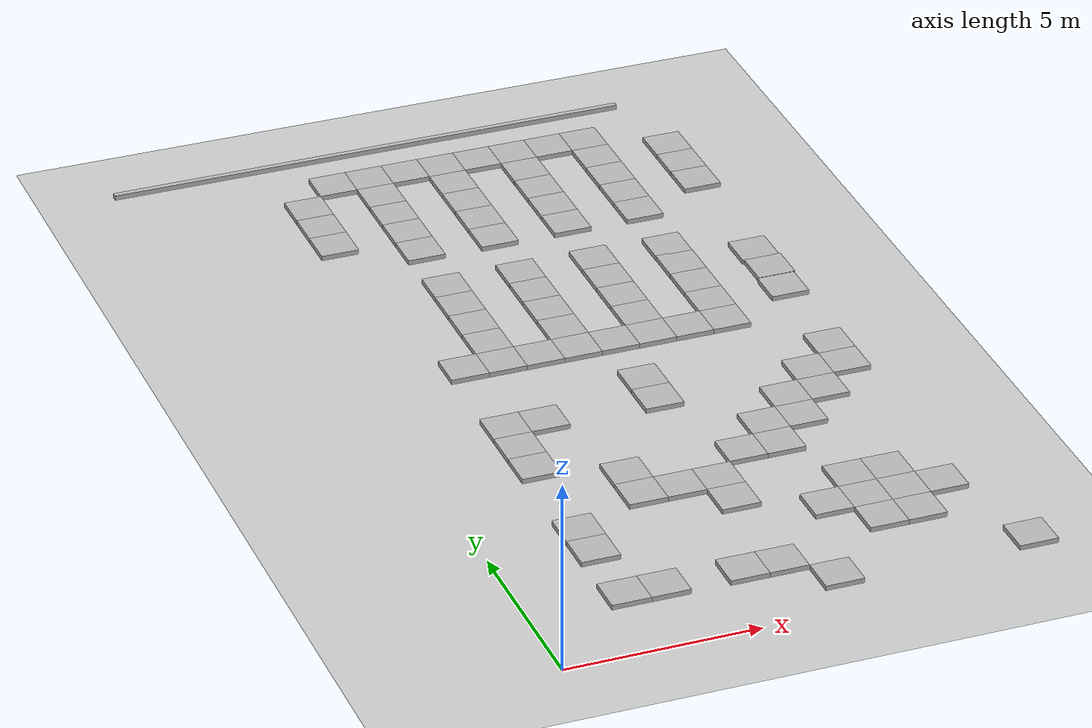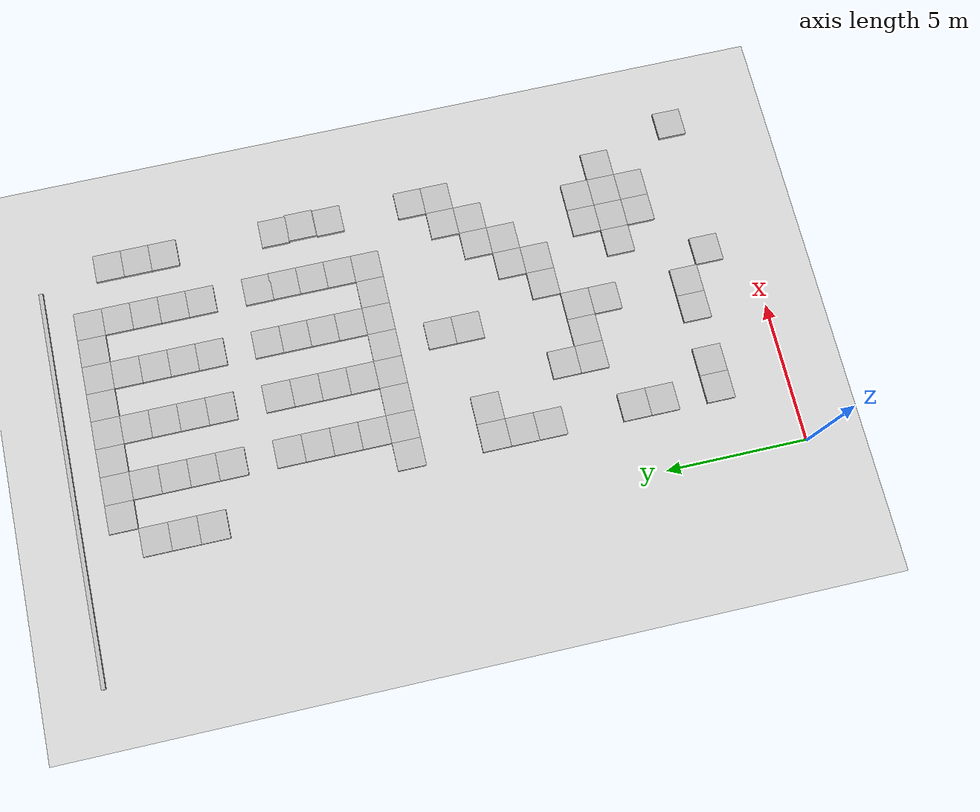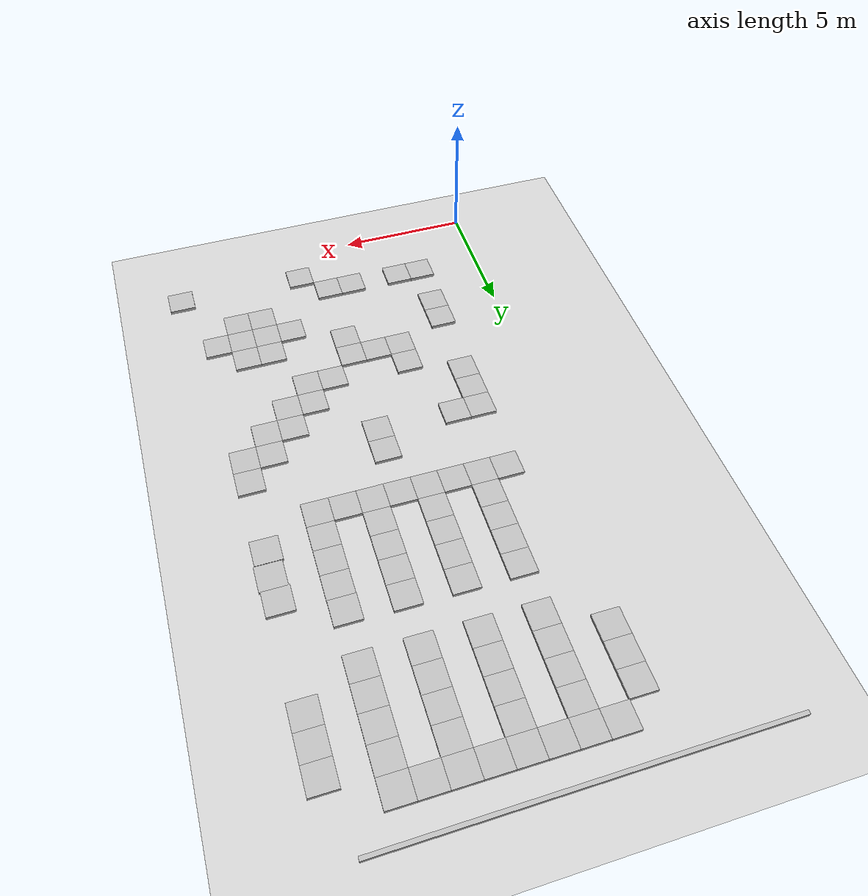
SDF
<sdf version="1.7">
 <world name="default">
  <model name="ground_plane">
   <static>1</static>
   <link name="link">
    <collision name="collision">
     <geometry><plane><normal>0 0 1</normal><size>100 100</size></plane></geometry>
     <surface>
      <contact><collide_bitmask>65535</collide_bitmask></contact>
      <friction><ode><mu>100</mu><mu2>50</mu2></ode></friction>
     </surface>
    </collision>
    <visual name="visual">
     <cast_shadows>0</cast_shadows>
     <geometry><plane><normal>0 0 1</normal><size>100 100</size></plane></geometry>
     <material>
      <script><uri>file://media/materials/scripts/gazebo.material</uri><name>Gazebo/Grey</name></script>
     </material>
    </visual>
   </link>
  </model>
  <model name="concrete_cube_1m_4">
   <static>1</static>
   <link name="link">
    <collision name="concrete_cube_1m">
     <pose>-0 0 0.3 0 -0 0</pose>
     <geometry><box><size>1 1 0.6</size></box></geometry>
    </collision>
    <visual name="concrete_cube_1m_visual">
     <geometry><mesh><uri>model://concrete_cube_1m/meshes/concrete_cube_1m.dae</uri></mesh></geometry>
    </visual>
   </link>
   <pose>6.5 2.5 0 0 -0 0</pose>
  </model>
  <model name="concrete_cube_1m_5">
   <static>1</static>
   <link name="link">
    <collision name="concrete_cube_1m">
     <pose>-0 0 0.3 0 -0 0</pose>
     <geometry><box><size>1 1 0.6</size></box></geometry>
    </collision>
    <visual name="concrete_cube_1m_visual">
     <geometry><mesh><uri>model://concrete_cube_1m/meshes/concrete_cube_1m.dae</uri></mesh></geometry>
    </visual>
   </link>
   <pose>5.5 2.5 0 0 -0 0</pose>
  </model>
  <model name="concrete_cube_1m_17">
   <static>1</static>
   <link name="link">
    <collision name="concrete_cube_1m">
     <pose>-0 0 0.3 0 -0 0</pose>
     <geometry><box><size>1 1 0.6</size></box></geometry>
    </collision>
    <visual name="concrete_cube_1m_visual">
     <geometry><mesh><uri>model://concrete_cube_1m/meshes/concrete_cube_1m.dae</uri></mesh></geometry>
    </visual>
   </link>
   <pose>2.5 5.5 0 0 -0 0</pose>
  </model>
  <model name="concrete_cube_1m_18">
   <static>1</static>
   <link name="link">
    <collision name="concrete_cube_1m">
     <pose>-0 0 0.3 0 -0 0</pose>
     <geometry><box><size>1 1 0.6</size></box></geometry>
    </collision>
    <visual name="concrete_cube_1m_visual">
     <geometry><mesh><uri>model://concrete_cube_1m/meshes/concrete_cube_1m.dae</uri></mesh></geometry>
    </visual>
   </link>
   <pose>8.5 8.5 0 0 -0 0</pose>
  </model>
  <model name="concrete_cube_1m_19">
   <static>1</static>
   <link name="link">
    <collision name="concrete_cube_1m">
     <pose>-0 0 0.3 0 -0 0</pose>
     <geometry><box><size>1 1 0.6</size></box></geometry>
    </collision>
    <visual name="concrete_cube_1m_visual">
     <geometry><mesh><uri>model://concrete_cube_1m/meshes/concrete_cube_1m.dae</uri></mesh></geometry>
    </visual>
   </link>
   <pose>7.5 7.5 0 0 -0 0</pose>
  </model>
  <model name="concrete_cube_1m_20">
   <static>1</static>
   <link name="link">
    <collision name="concrete_cube_1m">
     <pose>-0 0 0.3 0 -0 0</pose>
     <geometry><box><size>1 1 0.6</size></box></geometry>
    </collision>
    <visual name="concrete_cube_1m_visual">
     <geometry><mesh><uri>model://concrete_cube_1m/meshes/concrete_cube_1m.dae</uri></mesh></geometry>
    </visual>
   </link>
   <pose>6.5 6.5 0 0 -0 0</pose>
  </model>
  <model name="concrete_cube_1m_21">
   <static>1</static>
   <link name="link">
    <collision name="concrete_cube_1m">
     <pose>-0 0 0.3 0 -0 0</pose>
     <geometry><box><size>1 1 0.6</size></box></geometry>
    </collision>
    <visual name="concrete_cube_1m_visual">
     <geometry><mesh><uri>model://concrete_cube_1m/meshes/concrete_cube_1m.dae</uri></mesh></geometry>
    </visual>
   </link>
   <pose>6.5 5.5 0 0 -0 0</pose>
  </model>
  <model name="concrete_cube_1m_22">
   <static>1</static>
   <link name="link">
    <collision name="concrete_cube_1m">
     <pose>-0 0 0.3 0 -0 0</pose>
     <geometry><box><size>1 1 0.6</size></box></geometry>
    </collision>
    <visual name="concrete_cube_1m_visual">
     <geometry><mesh><uri>model://concrete_cube_1m/meshes/concrete_cube_1m.dae</uri></mesh></geometry>
    </visual>
   </link>
   <pose>5.5 6.5 0 0 -0 0</pose>
  </model>
  <model name="concrete_cube_1m_23">
   <static>1</static>
   <link name="link">
    <collision name="concrete_cube_1m">
     <pose>-0 0 0.3 0 -0 0</pose>
     <geometry><box><size>1 1 0.6</size></box></geometry>
    </collision>
    <visual name="concrete_cube_1m_visual">
     <geometry><mesh><uri>model://concrete_cube_1m/meshes/concrete_cube_1m.dae</uri></mesh></geometry>
    </visual>
   </link>
   <pose>4.5 6.5 0 0 -0 0</pose>
  </model>
  <model name="concrete_cube_1m_24">
   <static>1</static>
   <link name="link">
    <collision name="concrete_cube_1m">
     <pose>-0 0 0.3 0 -0 0</pose>
     <geometry><box><size>1 1 0.6</size></box></geometry>
    </collision>
    <visual name="concrete_cube_1m_visual">
     <geometry><mesh><uri>model://concrete_cube_1m/meshes/concrete_cube_1m.dae</uri></mesh></geometry>
    </visual>
   </link>
   <pose>4.5 7.5 0 0 -0 0</pose>
  </model>
  <model name="concrete_cube_1m_25">
   <static>1</static>
   <link name="link">
    <collision name="concrete_cube_1m">
     <pose>-0 0 0.3 0 -0 0</pose>
     <geometry><box><size>1 1 0.6</size></box></geometry>
    </collision>
    <visual name="concrete_cube_1m_visual">
     <geometry><mesh><uri>model://concrete_cube_1m/meshes/concrete_cube_1m.dae</uri></mesh></geometry>
    </visual>
   </link>
   <pose>3.5 2.5 0 0 -0 0</pose>
  </model>
  <model name="concrete_cube_1m_26">
   <static>1</static>
   <link name="link">
    <collision name="concrete_cube_1m">
     <pose>-0 0 0.3 0 -0 0</pose>
     <geometry><box><size>1 1 0.6</size></box></geometry>
    </collision>
    <visual name="concrete_cube_1m_visual">
     <geometry><mesh><uri>model://concrete_cube_1m/meshes/concrete_cube_1m.dae</uri></mesh></geometry>
    </visual>
   </link>
   <pose>2.5 2.5 0 0 -0 0</pose>
  </model>
  <model name="concrete_cube_1m_30">
   <static>1</static>
   <link name="link">
    <collision name="concrete_cube_1m">
     <pose>-0 0 0.3 0 -0 0</pose>
     <geometry><box><size>1 1 0.6</size></box></geometry>
    </collision>
    <visual name="concrete_cube_1m_visual">
     <geometry><mesh><uri>model://concrete_cube_1m/meshes/concrete_cube_1m.dae</uri></mesh></geometry>
    </visual>
   </link>
   <pose>8.5 4.5 0 0 -0 0</pose>
  </model>
  <model name="concrete_cube_1m_31">
   <static>1</static>
   <link name="link">
    <collision name="concrete_cube_1m">
     <pose>-0 0 0.3 0 -0 0</pose>
     <geometry><box><size>1 1 0.6</size></box></geometry>
    </collision>
    <visual name="concrete_cube_1m_visual">
     <geometry><mesh><uri>model://concrete_cube_1m/meshes/concrete_cube_1m.dae</uri></mesh></geometry>
    </visual>
   </link>
   <pose>9.5 4.5 0 0 -0 0</pose>
  </model>
  <model name="concrete_cube_1m_32">
   <static>1</static>
   <link name="link">
    <collision name="concrete_cube_1m">
     <pose>-0 0 0.3 0 -0 0</pose>
     <geometry><box><size>1 1 0.6</size></box></geometry>
    </collision>
    <visual name="concrete_cube_1m_visual">
     <geometry><mesh><uri>model://concrete_cube_1m/meshes/concrete_cube_1m.dae</uri></mesh></geometry>
    </visual>
   </link>
   <pose>9.5 3.5 0 0 -0 0</pose>
  </model>
  <model name="concrete_cube_1m_33">
   <static>1</static>
   <link name="link">
    <collision name="concrete_cube_1m">
     <pose>-0 0 0.3 0 -0 0</pose>
     <geometry><box><size>1 1 0.6</size></box></geometry>
    </collision>
    <visual name="concrete_cube_1m_visual">
     <geometry><mesh><uri>model://concrete_cube_1m/meshes/concrete_cube_1m.dae</uri></mesh></geometry>
    </visual>
   </link>
   <pose>9.5 5.5 0 0 -0 0</pose>
  </model>
  <model name="concrete_cube_1m_34">
   <static>1</static>
   <link name="link">
    <collision name="concrete_cube_1m">
     <pose>-0 0 0.3 0 -0 0</pose>
     <geometry><box><size>1 1 0.6</size></box></geometry>
    </collision>
    <visual name="concrete_cube_1m_visual">
     <geometry><mesh><uri>model://concrete_cube_1m/meshes/concrete_cube_1m.dae</uri></mesh></geometry>
    </visual>
   </link>
   <pose>7.5 1.5 0 0 -0 0</pose>
  </model>
  <model name="concrete_cube_1m_36">
   <static>1</static>
   <link name="link">
    <collision name="concrete_cube_1m">
     <pose>-0 0 0.3 0 -0 0</pose>
     <geometry><box><size>1 1 0.6</size></box></geometry>
    </collision>
    <visual name="concrete_cube_1m_visual">
     <geometry><mesh><uri>model://concrete_cube_1m/meshes/concrete_cube_1m.dae</uri></mesh></geometry>
    </visual>
   </link>
   <pose>2.5 8.5 0 0 -0 0</pose>
  </model>
  <model name="concrete_cube_1m_39">
   <static>1</static>
   <link name="link">
    <collision name="concrete_cube_1m">
     <pose>-0 0 0.3 0 -0 0</pose>
     <geometry><box><size>1 1 0.6</size></box></geometry>
    </collision>
    <visual name="concrete_cube_1m_visual">
     <geometry><mesh><uri>model://concrete_cube_1m/meshes/concrete_cube_1m.dae</uri></mesh></geometry>
    </visual>
   </link>
   <pose>2.5 4.5 0 0 -0 0</pose>
  </model>
  <model name="concrete_cube_1m_118">
   <static>1</static>
   <link name="link">
    <collision name="concrete_cube_1m">
     <pose>-0 0 0.3 0 -0 0</pose>
     <geometry><box><size>1 1 0.6</size></box></geometry>
    </collision>
    <visual name="concrete_cube_1m_visual">
     <geometry><mesh><uri>model://concrete_cube_1m/meshes/concrete_cube_1m.dae</uri></mesh></geometry>
    </visual>
   </link>
   <pose>12.5 1.5 0 0 -0 0</pose>
  </model>
  <model name="concrete_cube_1m_119">
   <static>1</static>
   <link name="link">
    <collision name="concrete_cube_1m">
     <pose>-0 0 0.3 0 -0 0</pose>
     <geometry><box><size>1 1 0.6</size></box></geometry>
    </collision>
    <visual name="concrete_cube_1m_visual">
     <geometry><mesh><uri>model://concrete_cube_1m/meshes/concrete_cube_1m.dae</uri></mesh></geometry>
    </visual>
   </link>
   <pose>10.5 3.5 0 0 -0 0</pose>
  </model>
  <model name="concrete_cube_1m_120">
   <static>1</static>
   <link name="link">
    <collision name="concrete_cube_1m">
     <pose>-0 0 0.3 0 -0 0</pose>
     <geometry><box><size>1 1 0.6</size></box></geometry>
    </collision>
    <visual name="concrete_cube_1m_visual">
     <geometry><mesh><uri>model://concrete_cube_1m/meshes/concrete_cube_1m.dae</uri></mesh></geometry>
    </visual>
   </link>
   <pose>10.5 4.5 0 0 -0 0</pose>
  </model>
  <model name="concrete_cube_1m_121">
   <static>1</static>
   <link name="link">
    <collision name="concrete_cube_1m">
     <pose>-0 0 0.3 0 -0 0</pose>
     <geometry><box><size>1 1 0.6</size></box></geometry>
    </collision>
    <visual name="concrete_cube_1m_visual">
     <geometry><mesh><uri>model://concrete_cube_1m/meshes/concrete_cube_1m.dae</uri></mesh></geometry>
    </visual>
   </link>
   <pose>10.5 5.5 0 0 -0 0</pose>
  </model>
  <model name="concrete_cube_1m_122">
   <static>1</static>
   <link name="link">
    <collision name="concrete_cube_1m">
     <pose>-0 0 0.3 0 -0 0</pose>
     <geometry><box><size>1 1 0.6</size></box></geometry>
    </collision>
    <visual name="concrete_cube_1m_visual">
     <geometry><mesh><uri>model://concrete_cube_1m/meshes/concrete_cube_1m.dae</uri></mesh></geometry>
    </visual>
   </link>
   <pose>11.5 4.5 0 0 -0 0</pose>
  </model>
  <model name="concrete_cube_1m_123">
   <static>1</static>
   <link name="link">
    <collision name="concrete_cube_1m">
     <pose>-0 0 0.3 0 -0 0</pose>
     <geometry><box><size>1 1 0.6</size></box></geometry>
    </collision>
    <visual name="concrete_cube_1m_visual">
     <geometry><mesh><uri>model://concrete_cube_1m/meshes/concrete_cube_1m.dae</uri></mesh></geometry>
    </visual>
   </link>
   <pose>9.5 9.5 0 0 -0 0</pose>
  </model>
  <model name="concrete_cube_1m_124">
   <static>1</static>
   <link name="link">
    <collision name="concrete_cube_1m">
     <pose>-0 0 0.3 0 -0 0</pose>
     <geometry><box><size>1 1 0.6</size></box></geometry>
    </collision>
    <visual name="concrete_cube_1m_visual">
     <geometry><mesh><uri>model://concrete_cube_1m/meshes/concrete_cube_1m.dae</uri></mesh></geometry>
    </visual>
   </link>
   <pose>10.5 10.5 0 0 -0 0</pose>
  </model>
  <model name="concrete_cube_1m_125">
   <static>1</static>
   <link name="link">
    <collision name="concrete_cube_1m">
     <pose>-0 0 0.3 0 -0 0</pose>
     <geometry><box><size>1 1 0.6</size></box></geometry>
    </collision>
    <visual name="concrete_cube_1m_visual">
     <geometry><mesh><uri>model://concrete_cube_1m/meshes/concrete_cube_1m.dae</uri></mesh></geometry>
    </visual>
   </link>
   <pose>10.5 9.5 0 0 -0 0</pose>
  </model>
  <model name="concrete_cube_1m_126">
   <static>1</static>
   <link name="link">
    <collision name="concrete_cube_1m">
     <pose>-0 0 0.3 0 -0 0</pose>
     <geometry><box><size>1 1 0.6</size></box></geometry>
    </collision>
    <visual name="concrete_cube_1m_visual">
     <geometry><mesh><uri>model://concrete_cube_1m/meshes/concrete_cube_1m.dae</uri></mesh></geometry>
    </visual>
   </link>
   <pose>9.5 8.5 0 0 -0 0</pose>
  </model>
  <model name="concrete_cube_1m_127">
   <static>1</static>
   <link name="link">
    <collision name="concrete_cube_1m">
     <pose>-0 0 0.3 0 -0 0</pose>
     <geometry><box><size>1 1 0.6</size></box></geometry>
    </collision>
    <visual name="concrete_cube_1m_visual">
     <geometry><mesh><uri>model://concrete_cube_1m/meshes/concrete_cube_1m.dae</uri></mesh></geometry>
    </visual>
   </link>
   <pose>8.5 7.5 0 0 -0 0</pose>
  </model>
  <model name="concrete_cube_1m_128">
   <static>1</static>
   <link name="link">
    <collision name="concrete_cube_1m">
     <pose>-0 0 0.3 0 -0 0</pose>
     <geometry><box><size>1 1 0.6</size></box></geometry>
    </collision>
    <visual name="concrete_cube_1m_visual">
     <geometry><mesh><uri>model://concrete_cube_1m/meshes/concrete_cube_1m.dae</uri></mesh></geometry>
    </visual>
   </link>
   <pose>11.5 10.5 0 0 -0 0</pose>
  </model>
  <model name="concrete_cube_1m_129">
   <static>1</static>
   <link name="link">
    <collision name="concrete_cube_1m">
     <pose>-0 0 0.3 0 -0 0</pose>
     <geometry><box><size>1 1 0.6</size></box></geometry>
    </collision>
    <visual name="concrete_cube_1m_visual">
     <geometry><mesh><uri>model://concrete_cube_1m/meshes/concrete_cube_1m.dae</uri></mesh></geometry>
    </visual>
   </link>
   <pose>11.5 11.5 0 0 -0 0</pose>
  </model>
  <model name="concrete_cube_1m_130">
   <static>1</static>
   <link name="link">
    <collision name="concrete_cube_1m">
     <pose>-0 0 0.3 0 -0 0</pose>
     <geometry><box><size>1 1 0.6</size></box></geometry>
    </collision>
    <visual name="concrete_cube_1m_visual">
     <geometry><mesh><uri>model://concrete_cube_1m/meshes/concrete_cube_1m.dae</uri></mesh></geometry>
    </visual>
   </link>
   <pose>2.5 9.5 0 0 -0 0</pose>
  </model>
  <model name="concrete_cube_1m_131">
   <static>1</static>
   <link name="link">
    <collision name="concrete_cube_1m">
     <pose>-0 0 0.3 0 -0 0</pose>
     <geometry><box><size>1 1 0.6</size></box></geometry>
    </collision>
    <visual name="concrete_cube_1m_visual">
     <geometry><mesh><uri>model://concrete_cube_1m/meshes/concrete_cube_1m.dae</uri></mesh></geometry>
    </visual>
   </link>
   <pose>2.5 10.5 0 0 -0 0</pose>
  </model>
  <model name="concrete_cube_1m_134">
   <static>1</static>
   <link name="link">
    <collision name="concrete_cube_1m">
     <pose>-0 0 0.3 0 -0 0</pose>
     <geometry><box><size>1 1 0.6</size></box></geometry>
    </collision>
    <visual name="concrete_cube_1m_visual">
     <geometry><mesh><uri>model://concrete_cube_1m/meshes/concrete_cube_1m.dae</uri></mesh></geometry>
    </visual>
   </link>
   <pose>3.5 10.5 0 0 -0 0</pose>
  </model>
  <model name="concrete_cube_1m_135">
   <static>1</static>
   <link name="link">
    <collision name="concrete_cube_1m">
     <pose>-0 0 0.3 0 -0 0</pose>
     <geometry><box><size>1 1 0.6</size></box></geometry>
    </collision>
    <visual name="concrete_cube_1m_visual">
     <geometry><mesh><uri>model://concrete_cube_1m/meshes/concrete_cube_1m.dae</uri></mesh></geometry>
    </visual>
   </link>
   <pose>9.5 13.5 0 0 -0 0</pose>
  </model>
  <model name="concrete_cube_1m_136">
   <static>1</static>
   <link name="link">
    <collision name="concrete_cube_1m">
     <pose>-0 0 0.3 0 -0 0</pose>
     <geometry><box><size>1 1 0.6</size></box></geometry>
    </collision>
    <visual name="concrete_cube_1m_visual">
     <geometry><mesh><uri>model://concrete_cube_1m/meshes/concrete_cube_1m.dae</uri></mesh></geometry>
    </visual>
   </link>
   <pose>8.5 13.5 0 0 -0 0</pose>
  </model>
  <model name="concrete_cube_1m_137">
   <static>1</static>
   <link name="link">
    <collision name="concrete_cube_1m">
     <pose>-0 0 0.3 0 -0 0</pose>
     <geometry><box><size>1 1 0.6</size></box></geometry>
    </collision>
    <visual name="concrete_cube_1m_visual">
     <geometry><mesh><uri>model://concrete_cube_1m/meshes/concrete_cube_1m.dae</uri></mesh></geometry>
    </visual>
   </link>
   <pose>7.5 13.5 0 0 -0 0</pose>
  </model>
  <model name="concrete_cube_1m_138">
   <static>1</static>
   <link name="link">
    <collision name="concrete_cube_1m">
     <pose>-0 0 0.3 0 -0 0</pose>
     <geometry><box><size>1 1 0.6</size></box></geometry>
    </collision>
    <visual name="concrete_cube_1m_visual">
     <geometry><mesh><uri>model://concrete_cube_1m/meshes/concrete_cube_1m.dae</uri></mesh></geometry>
    </visual>
   </link>
   <pose>6.5 13.5 0 0 -0 0</pose>
  </model>
  <model name="concrete_cube_1m_139">
   <static>1</static>
   <link name="link">
    <collision name="concrete_cube_1m">
     <pose>-0 0 0.3 0 -0 0</pose>
     <geometry><box><size>1 1 0.6</size></box></geometry>
    </collision>
    <visual name="concrete_cube_1m_visual">
     <geometry><mesh><uri>model://concrete_cube_1m/meshes/concrete_cube_1m.dae</uri></mesh></geometry>
    </visual>
   </link>
   <pose>5.5 13.5 0 0 -0 0</pose>
  </model>
  <model name="concrete_cube_1m_140">
   <static>1</static>
   <link name="link">
    <collision name="concrete_cube_1m">
     <pose>-0 0 0.3 0 -0 0</pose>
     <geometry><box><size>1 1 0.6</size></box></geometry>
    </collision>
    <visual name="concrete_cube_1m_visual">
     <geometry><mesh><uri>model://concrete_cube_1m/meshes/concrete_cube_1m.dae</uri></mesh></geometry>
    </visual>
   </link>
   <pose>4.5 13.5 0 0 -0 0</pose>
  </model>
  <model name="concrete_cube_1m_141">
   <static>1</static>
   <link name="link">
    <collision name="concrete_cube_1m">
     <pose>-0 0 0.3 0 -0 0</pose>
     <geometry><box><size>1 1 0.6</size></box></geometry>
    </collision>
    <visual name="concrete_cube_1m_visual">
     <geometry><mesh><uri>model://concrete_cube_1m/meshes/concrete_cube_1m.dae</uri></mesh></geometry>
    </visual>
   </link>
   <pose>3.5 13.5 0 0 -0 0</pose>
  </model>
  <model name="concrete_cube_1m_142">
   <static>1</static>
   <link name="link">
    <collision name="concrete_cube_1m">
     <pose>-0 0 0.3 0 -0 0</pose>
     <geometry><box><size>1 1 0.6</size></box></geometry>
    </collision>
    <visual name="concrete_cube_1m_visual">
     <geometry><mesh><uri>model://concrete_cube_1m/meshes/concrete_cube_1m.dae</uri></mesh></geometry>
    </visual>
   </link>
   <pose>2.5 13.5 0 0 -0 0</pose>
  </model>
  <model name="concrete_cube_1m_143">
   <static>1</static>
   <link name="link">
    <collision name="concrete_cube_1m">
     <pose>-0 0 0.3 0 -0 0</pose>
     <geometry><box><size>1 1 0.6</size></box></geometry>
    </collision>
    <visual name="concrete_cube_1m_visual">
     <geometry><mesh><uri>model://concrete_cube_1m/meshes/concrete_cube_1m.dae</uri></mesh></geometry>
    </visual>
   </link>
   <pose>6.5 10.5 0 0 -0 0</pose>
  </model>
  <model name="concrete_cube_1m_144">
   <static>1</static>
   <link name="link">
    <collision name="concrete_cube_1m">
     <pose>-0 0 0.3 0 -0 0</pose>
     <geometry><box><size>1 1 0.6</size></box></geometry>
    </collision>
    <visual name="concrete_cube_1m_visual">
     <geometry><mesh><uri>model://concrete_cube_1m/meshes/concrete_cube_1m.dae</uri></mesh></geometry>
    </visual>
   </link>
   <pose>6.5 11.5 0 0 -0 0</pose>
  </model>
  <model name="concrete_barrier_14m_4_clone">
   <static>1</static>
   <link name="link">
    <collision name="concrete_barrier_14m_01">
     <pose>-0 0 0.3 0 -0 0</pose>
     <geometry><box><size>14 0.15 0.6</size></box></geometry>
    </collision>
    <visual name="concrete_barrier_14m_visual">
     <geometry><mesh><uri>model://concrete_barrier_14m/meshes/concrete_barrier_14m.dae</uri></mesh></geometry>
    </visual>
   </link>
   <pose>4 25 0 0 0 -1.56953</pose>
  </model>
  <model name="concrete_cube_1m_250">
   <static>1</static>
   <link name="link">
    <collision name="concrete_cube_1m">
     <pose>-0 0 0.3 0 -0 0</pose>
     <geometry><box><size>1 1 0.6</size></box></geometry>
    </collision>
    <visual name="concrete_cube_1m_visual">
     <geometry><mesh><uri>model://concrete_cube_1m/meshes/concrete_cube_1m.dae</uri></mesh></geometry>
    </visual>
   </link>
   <pose>9.5 14.5 0 0 -0 0</pose>
  </model>
  <model name="concrete_cube_1m_251">
   <static>1</static>
   <link name="link">
    <collision name="concrete_cube_1m">
     <pose>-0 0 0.3 0 -0 0</pose>
     <geometry><box><size>1 1 0.6</size></box></geometry>
    </collision>
    <visual name="concrete_cube_1m_visual">
     <geometry><mesh><uri>model://concrete_cube_1m/meshes/concrete_cube_1m.dae</uri></mesh></geometry>
    </visual>
   </link>
   <pose>9.5 15.5 0 0 -0 0</pose>
  </model>
  <model name="concrete_cube_1m_252">
   <static>1</static>
   <link name="link">
    <collision name="concrete_cube_1m">
     <pose>-0 0 0.3 0 -0 0</pose>
     <geometry><box><size>1 1 0.6</size></box></geometry>
    </collision>
    <visual name="concrete_cube_1m_visual">
     <geometry><mesh><uri>model://concrete_cube_1m/meshes/concrete_cube_1m.dae</uri></mesh></geometry>
    </visual>
   </link>
   <pose>9.5 16.5 0 0 -0 0</pose>
  </model>
  <model name="concrete_cube_1m_253">
   <static>1</static>
   <link name="link">
    <collision name="concrete_cube_1m">
     <pose>-0 0 0.3 0 -0 0</pose>
     <geometry><box><size>1 1 0.6</size></box></geometry>
    </collision>
    <visual name="concrete_cube_1m_visual">
     <geometry><mesh><uri>model://concrete_cube_1m/meshes/concrete_cube_1m.dae</uri></mesh></geometry>
    </visual>
   </link>
   <pose>9.4922 17.4677 0 0 -0 0</pose>
  </model>
  <model name="concrete_cube_1m_274">
   <static>1</static>
   <link name="link">
    <collision name="concrete_cube_1m">
     <pose>-0 0 0.3 0 -0 0</pose>
     <geometry><box><size>1 1 0.6</size></box></geometry>
    </collision>
    <visual name="concrete_cube_1m_visual">
     <geometry><mesh><uri>model://concrete_cube_1m/meshes/concrete_cube_1m.dae</uri></mesh></geometry>
    </visual>
   </link>
   <pose>11.5431 15.5169 0 0 -0 0</pose>
  </model>
  <model name="concrete_cube_1m_281">
   <static>1</static>
   <link name="link">
    <collision name="concrete_cube_1m">
     <pose>-0 0 0.3 0 -0 0</pose>
     <geometry><box><size>1 1 0.6</size></box></geometry>
    </collision>
    <visual name="concrete_cube_1m_visual">
     <geometry><mesh><uri>model://concrete_cube_1m/meshes/concrete_cube_1m.dae</uri></mesh></geometry>
    </visual>
   </link>
   <pose>11.5 14.5 0 0 -0 0</pose>
  </model>
  <model name="concrete_cube_1m_282">
   <static>1</static>
   <link name="link">
    <collision name="concrete_cube_1m">
     <pose>-0 0 0.3 0 -0 0</pose>
     <geometry><box><size>1 1 0.6</size></box></geometry>
    </collision>
    <visual name="concrete_cube_1m_visual">
     <geometry><mesh><uri>model://concrete_cube_1m/meshes/concrete_cube_1m.dae</uri></mesh></geometry>
    </visual>
   </link>
   <pose>11.5 16.5 0 0 -0 0</pose>
  </model>
  <model name="concrete_cube_1m_285">
   <static>1</static>
   <link name="link">
    <collision name="concrete_cube_1m">
     <pose>-0 0 0.3 0 -0 0</pose>
     <geometry><box><size>1 1 0.6</size></box></geometry>
    </collision>
    <visual name="concrete_cube_1m_visual">
     <geometry><mesh><uri>model://concrete_cube_1m/meshes/concrete_cube_1m.dae</uri></mesh></geometry>
    </visual>
   </link>
   <pose>7.5 14.5 0 0 -0 0</pose>
  </model>
  <model name="concrete_cube_1m_286">
   <static>1</static>
   <link name="link">
    <collision name="concrete_cube_1m">
     <pose>-0 0 0.3 0 -0 0</pose>
     <geometry><box><size>1 1 0.6</size></box></geometry>
    </collision>
    <visual name="concrete_cube_1m_visual">
     <geometry><mesh><uri>model://concrete_cube_1m/meshes/concrete_cube_1m.dae</uri></mesh></geometry>
    </visual>
   </link>
   <pose>7.5 15.5 0 0 -0 0</pose>
  </model>
  <model name="concrete_cube_1m_287">
   <static>1</static>
   <link name="link">
    <collision name="concrete_cube_1m">
     <pose>-0 0 0.3 0 -0 0</pose>
     <geometry><box><size>1 1 0.6</size></box></geometry>
    </collision>
    <visual name="concrete_cube_1m_visual">
     <geometry><mesh><uri>model://concrete_cube_1m/meshes/concrete_cube_1m.dae</uri></mesh></geometry>
    </visual>
   </link>
   <pose>7.5 16.5 0 0 -0 0</pose>
  </model>
  <model name="concrete_cube_1m_288">
   <static>1</static>
   <link name="link">
    <collision name="concrete_cube_1m">
     <pose>-0 0 0.3 0 -0 0</pose>
     <geometry><box><size>1 1 0.6</size></box></geometry>
    </collision>
    <visual name="concrete_cube_1m_visual">
     <geometry><mesh><uri>model://concrete_cube_1m/meshes/concrete_cube_1m.dae</uri></mesh></geometry>
    </visual>
   </link>
   <pose>7.5 17.5 0 0 -0 0</pose>
  </model>
  <model name="concrete_cube_1m_289">
   <static>1</static>
   <link name="link">
    <collision name="concrete_cube_1m">
     <pose>-0 0 0.3 0 -0 0</pose>
     <geometry><box><size>1 1 0.6</size></box></geometry>
    </collision>
    <visual name="concrete_cube_1m_visual">
     <geometry><mesh><uri>model://concrete_cube_1m/meshes/concrete_cube_1m.dae</uri></mesh></geometry>
    </visual>
   </link>
   <pose>5.5 14.5 0 0 -0 0</pose>
  </model>
  <model name="concrete_cube_1m_290">
   <static>1</static>
   <link name="link">
    <collision name="concrete_cube_1m">
     <pose>-0 0 0.3 0 -0 0</pose>
     <geometry><box><size>1 1 0.6</size></box></geometry>
    </collision>
    <visual name="concrete_cube_1m_visual">
     <geometry><mesh><uri>model://concrete_cube_1m/meshes/concrete_cube_1m.dae</uri></mesh></geometry>
    </visual>
   </link>
   <pose>5.5 15.5 0 0 -0 0</pose>
  </model>
  <model name="concrete_cube_1m_291">
   <static>1</static>
   <link name="link">
    <collision name="concrete_cube_1m">
     <pose>-0 0 0.3 0 -0 0</pose>
     <geometry><box><size>1 1 0.6</size></box></geometry>
    </collision>
    <visual name="concrete_cube_1m_visual">
     <geometry><mesh><uri>model://concrete_cube_1m/meshes/concrete_cube_1m.dae</uri></mesh></geometry>
    </visual>
   </link>
   <pose>5.5 16.5 0 0 -0 0</pose>
  </model>
  <model name="concrete_cube_1m_292">
   <static>1</static>
   <link name="link">
    <collision name="concrete_cube_1m">
     <pose>-0 0 0.3 0 -0 0</pose>
     <geometry><box><size>1 1 0.6</size></box></geometry>
    </collision>
    <visual name="concrete_cube_1m_visual">
     <geometry><mesh><uri>model://concrete_cube_1m/meshes/concrete_cube_1m.dae</uri></mesh></geometry>
    </visual>
   </link>
   <pose>5.5 17.5 0 0 -0 0</pose>
  </model>
  <model name="concrete_cube_1m_293">
   <static>1</static>
   <link name="link">
    <collision name="concrete_cube_1m">
     <pose>-0 0 0.3 0 -0 0</pose>
     <geometry><box><size>1 1 0.6</size></box></geometry>
    </collision>
    <visual name="concrete_cube_1m_visual">
     <geometry><mesh><uri>model://concrete_cube_1m/meshes/concrete_cube_1m.dae</uri></mesh></geometry>
    </visual>
   </link>
   <pose>3.5 14.5 0 0 -0 0</pose>
  </model>
  <model name="concrete_cube_1m_294">
   <static>1</static>
   <link name="link">
    <collision name="concrete_cube_1m">
     <pose>-0 0 0.3 0 -0 0</pose>
     <geometry><box><size>1 1 0.6</size></box></geometry>
    </collision>
    <visual name="concrete_cube_1m_visual">
     <geometry><mesh><uri>model://concrete_cube_1m/meshes/concrete_cube_1m.dae</uri></mesh></geometry>
    </visual>
   </link>
   <pose>3.5 15.5 0 0 -0 0</pose>
  </model>
  <model name="concrete_cube_1m_295">
   <static>1</static>
   <link name="link">
    <collision name="concrete_cube_1m">
     <pose>-0 0 0.3 0 -0 0</pose>
     <geometry><box><size>1 1 0.6</size></box></geometry>
    </collision>
    <visual name="concrete_cube_1m_visual">
     <geometry><mesh><uri>model://concrete_cube_1m/meshes/concrete_cube_1m.dae</uri></mesh></geometry>
    </visual>
   </link>
   <pose>3.5 16.5 0 0 -0 0</pose>
  </model>
  <model name="concrete_cube_1m_296">
   <static>1</static>
   <link name="link">
    <collision name="concrete_cube_1m">
     <pose>-0 0 0.3 0 -0 0</pose>
     <geometry><box><size>1 1 0.6</size></box></geometry>
    </collision>
    <visual name="concrete_cube_1m_visual">
     <geometry><mesh><uri>model://concrete_cube_1m/meshes/concrete_cube_1m.dae</uri></mesh></geometry>
    </visual>
   </link>
   <pose>3.5 17.5 0 0 -0 0</pose>
  </model>
  <model name="concrete_cube_1m_598">
   <static>1</static>
   <link name="link">
    <collision name="concrete_cube_1m">
     <pose>-0 0 0.3 0 -0 0</pose>
     <geometry><box><size>1 1 0.6</size></box></geometry>
    </collision>
    <visual name="concrete_cube_1m_visual">
     <geometry><mesh><uri>model://concrete_cube_1m/meshes/concrete_cube_1m.dae</uri></mesh></geometry>
    </visual>
   </link>
   <pose>2.5 23.5 0 0 -0 0</pose>
  </model>
  <model name="concrete_cube_1m_599">
   <static>1</static>
   <link name="link">
    <collision name="concrete_cube_1m">
     <pose>-0 0 0.3 0 -0 0</pose>
     <geometry><box><size>1 1 0.6</size></box></geometry>
    </collision>
    <visual name="concrete_cube_1m_visual">
     <geometry><mesh><uri>model://concrete_cube_1m/meshes/concrete_cube_1m.dae</uri></mesh></geometry>
    </visual>
   </link>
   <pose>3.5 23.5 0 0 -0 0</pose>
  </model>
  <model name="concrete_cube_1m_600">
   <static>1</static>
   <link name="link">
    <collision name="concrete_cube_1m">
     <pose>-0 0 0.3 0 -0 0</pose>
     <geometry><box><size>1 1 0.6</size></box></geometry>
    </collision>
    <visual name="concrete_cube_1m_visual">
     <geometry><mesh><uri>model://concrete_cube_1m/meshes/concrete_cube_1m.dae</uri></mesh></geometry>
    </visual>
   </link>
   <pose>4.5 23.5 0 0 -0 0</pose>
  </model>
  <model name="concrete_cube_1m_601">
   <static>1</static>
   <link name="link">
    <collision name="concrete_cube_1m">
     <pose>-0 0 0.3 0 -0 0</pose>
     <geometry><box><size>1 1 0.6</size></box></geometry>
    </collision>
    <visual name="concrete_cube_1m_visual">
     <geometry><mesh><uri>model://concrete_cube_1m/meshes/concrete_cube_1m.dae</uri></mesh></geometry>
    </visual>
   </link>
   <pose>5.5 23.5 0 0 -0 0</pose>
  </model>
  <model name="concrete_cube_1m_602">
   <static>1</static>
   <link name="link">
    <collision name="concrete_cube_1m">
     <pose>-0 0 0.3 0 -0 0</pose>
     <geometry><box><size>1 1 0.6</size></box></geometry>
    </collision>
    <visual name="concrete_cube_1m_visual">
     <geometry><mesh><uri>model://concrete_cube_1m/meshes/concrete_cube_1m.dae</uri></mesh></geometry>
    </visual>
   </link>
   <pose>6.5 23.5 0 0 -0 0</pose>
  </model>
  <model name="concrete_cube_1m_603">
   <static>1</static>
   <link name="link">
    <collision name="concrete_cube_1m">
     <pose>-0 0 0.3 0 -0 0</pose>
     <geometry><box><size>1 1 0.6</size></box></geometry>
    </collision>
    <visual name="concrete_cube_1m_visual">
     <geometry><mesh><uri>model://concrete_cube_1m/meshes/concrete_cube_1m.dae</uri></mesh></geometry>
    </visual>
   </link>
   <pose>7.5 23.5 0 0 -0 0</pose>
  </model>
  <model name="concrete_cube_1m_604">
   <static>1</static>
   <link name="link">
    <collision name="concrete_cube_1m">
     <pose>-0 0 0.3 0 -0 0</pose>
     <geometry><box><size>1 1 0.6</size></box></geometry>
    </collision>
    <visual name="concrete_cube_1m_visual">
     <geometry><mesh><uri>model://concrete_cube_1m/meshes/concrete_cube_1m.dae</uri></mesh></geometry>
    </visual>
   </link>
   <pose>8.5 23.5 0 0 -0 0</pose>
  </model>
  <model name="concrete_cube_1m_605">
   <static>1</static>
   <link name="link">
    <collision name="concrete_cube_1m">
     <pose>-0 0 0.3 0 -0 0</pose>
     <geometry><box><size>1 1 0.6</size></box></geometry>
    </collision>
    <visual name="concrete_cube_1m_visual">
     <geometry><mesh><uri>model://concrete_cube_1m/meshes/concrete_cube_1m.dae</uri></mesh></geometry>
    </visual>
   </link>
   <pose>9.5 23.5 0 0 -0 0</pose>
  </model>
  <model name="concrete_cube_1m_606">
   <static>1</static>
   <link name="link">
    <collision name="concrete_cube_1m">
     <pose>-0 0 0.3 0 -0 0</pose>
     <geometry><box><size>1 1 0.6</size></box></geometry>
    </collision>
    <visual name="concrete_cube_1m_visual">
     <geometry><mesh><uri>model://concrete_cube_1m/meshes/concrete_cube_1m.dae</uri></mesh></geometry>
    </visual>
   </link>
   <pose>9.5 22.5 0 0 -0 0</pose>
  </model>
  <model name="concrete_cube_1m_607">
   <static>1</static>
   <link name="link">
    <collision name="concrete_cube_1m">
     <pose>-0 0 0.3 0 -0 0</pose>
     <geometry><box><size>1 1 0.6</size></box></geometry>
    </collision>
    <visual name="concrete_cube_1m_visual">
     <geometry><mesh><uri>model://concrete_cube_1m/meshes/concrete_cube_1m.dae</uri></mesh></geometry>
    </visual>
   </link>
   <pose>9.5 21.5 0 0 -0 0</pose>
  </model>
  <model name="concrete_cube_1m_608">
   <static>1</static>
   <link name="link">
    <collision name="concrete_cube_1m">
     <pose>-0 0 0.3 0 -0 0</pose>
     <geometry><box><size>1 1 0.6</size></box></geometry>
    </collision>
    <visual name="concrete_cube_1m_visual">
     <geometry><mesh><uri>model://concrete_cube_1m/meshes/concrete_cube_1m.dae</uri></mesh></geometry>
    </visual>
   </link>
   <pose>9.5 20.5 0 0 -0 0</pose>
  </model>
  <model name="concrete_cube_1m_609">
   <static>1</static>
   <link name="link">
    <collision name="concrete_cube_1m">
     <pose>-0 0 0.3 0 -0 0</pose>
     <geometry><box><size>1 1 0.6</size></box></geometry>
    </collision>
    <visual name="concrete_cube_1m_visual">
     <geometry><mesh><uri>model://concrete_cube_1m/meshes/concrete_cube_1m.dae</uri></mesh></geometry>
    </visual>
   </link>
   <pose>9.5 19.5 0 0 -0 0</pose>
  </model>
  <model name="concrete_cube_1m_610">
   <static>1</static>
   <link name="link">
    <collision name="concrete_cube_1m">
     <pose>-0 0 0.3 0 -0 0</pose>
     <geometry><box><size>1 1 0.6</size></box></geometry>
    </collision>
    <visual name="concrete_cube_1m_visual">
     <geometry><mesh><uri>model://concrete_cube_1m/meshes/concrete_cube_1m.dae</uri></mesh></geometry>
    </visual>
   </link>
   <pose>7.5 19.5 0 0 -0 0</pose>
  </model>
  <model name="concrete_cube_1m_611">
   <static>1</static>
   <link name="link">
    <collision name="concrete_cube_1m">
     <pose>-0 0 0.3 0 -0 0</pose>
     <geometry><box><size>1 1 0.6</size></box></geometry>
    </collision>
    <visual name="concrete_cube_1m_visual">
     <geometry><mesh><uri>model://concrete_cube_1m/meshes/concrete_cube_1m.dae</uri></mesh></geometry>
    </visual>
   </link>
   <pose>7.5 20.5 0 0 -0 0</pose>
  </model>
  <model name="concrete_cube_1m_612">
   <static>1</static>
   <link name="link">
    <collision name="concrete_cube_1m">
     <pose>-0 0 0.3 0 -0 0</pose>
     <geometry><box><size>1 1 0.6</size></box></geometry>
    </collision>
    <visual name="concrete_cube_1m_visual">
     <geometry><mesh><uri>model://concrete_cube_1m/meshes/concrete_cube_1m.dae</uri></mesh></geometry>
    </visual>
   </link>
   <pose>7.5 21.5 0 0 -0 0</pose>
  </model>
  <model name="concrete_cube_1m_613">
   <static>1</static>
   <link name="link">
    <collision name="concrete_cube_1m">
     <pose>-0 0 0.3 0 -0 0</pose>
     <geometry><box><size>1 1 0.6</size></box></geometry>
    </collision>
    <visual name="concrete_cube_1m_visual">
     <geometry><mesh><uri>model://concrete_cube_1m/meshes/concrete_cube_1m.dae</uri></mesh></geometry>
    </visual>
   </link>
   <pose>7.5 22.5 0 0 -0 0</pose>
  </model>
  <model name="concrete_cube_1m_614">
   <static>1</static>
   <link name="link">
    <collision name="concrete_cube_1m">
     <pose>-0 0 0.3 0 -0 0</pose>
     <geometry><box><size>1 1 0.6</size></box></geometry>
    </collision>
    <visual name="concrete_cube_1m_visual">
     <geometry><mesh><uri>model://concrete_cube_1m/meshes/concrete_cube_1m.dae</uri></mesh></geometry>
    </visual>
   </link>
   <pose>5.5 19.5 0 0 -0 0</pose>
  </model>
  <model name="concrete_cube_1m_615">
   <static>1</static>
   <link name="link">
    <collision name="concrete_cube_1m">
     <pose>-0 0 0.3 0 -0 0</pose>
     <geometry><box><size>1 1 0.6</size></box></geometry>
    </collision>
    <visual name="concrete_cube_1m_visual">
     <geometry><mesh><uri>model://concrete_cube_1m/meshes/concrete_cube_1m.dae</uri></mesh></geometry>
    </visual>
   </link>
   <pose>5.5 20.5 0 0 -0 0</pose>
  </model>
  <model name="concrete_cube_1m_616">
   <static>1</static>
   <link name="link">
    <collision name="concrete_cube_1m">
     <pose>-0 0 0.3 0 -0 0</pose>
     <geometry><box><size>1 1 0.6</size></box></geometry>
    </collision>
    <visual name="concrete_cube_1m_visual">
     <geometry><mesh><uri>model://concrete_cube_1m/meshes/concrete_cube_1m.dae</uri></mesh></geometry>
    </visual>
   </link>
   <pose>5.5 21.5 0 0 -0 0</pose>
  </model>
  <model name="concrete_cube_1m_617">
   <static>1</static>
   <link name="link">
    <collision name="concrete_cube_1m">
     <pose>-0 0 0.3 0 -0 0</pose>
     <geometry><box><size>1 1 0.6</size></box></geometry>
    </collision>
    <visual name="concrete_cube_1m_visual">
     <geometry><mesh><uri>model://concrete_cube_1m/meshes/concrete_cube_1m.dae</uri></mesh></geometry>
    </visual>
   </link>
   <pose>5.5 22.5 0 0 -0 0</pose>
  </model>
  <model name="concrete_cube_1m_618">
   <static>1</static>
   <link name="link">
    <collision name="concrete_cube_1m">
     <pose>-0 0 0.3 0 -0 0</pose>
     <geometry><box><size>1 1 0.6</size></box></geometry>
    </collision>
    <visual name="concrete_cube_1m_visual">
     <geometry><mesh><uri>model://concrete_cube_1m/meshes/concrete_cube_1m.dae</uri></mesh></geometry>
    </visual>
   </link>
   <pose>3.5 19.5 0 0 -0 0</pose>
  </model>
  <model name="concrete_cube_1m_619">
   <static>1</static>
   <link name="link">
    <collision name="concrete_cube_1m">
     <pose>-0 0 0.3 0 -0 0</pose>
     <geometry><box><size>1 1 0.6</size></box></geometry>
    </collision>
    <visual name="concrete_cube_1m_visual">
     <geometry><mesh><uri>model://concrete_cube_1m/meshes/concrete_cube_1m.dae</uri></mesh></geometry>
    </visual>
   </link>
   <pose>3.5 20.5 0 0 -0 0</pose>
  </model>
  <model name="concrete_cube_1m_620">
   <static>1</static>
   <link name="link">
    <collision name="concrete_cube_1m">
     <pose>-0 0 0.3 0 -0 0</pose>
     <geometry><box><size>1 1 0.6</size></box></geometry>
    </collision>
    <visual name="concrete_cube_1m_visual">
     <geometry><mesh><uri>model://concrete_cube_1m/meshes/concrete_cube_1m.dae</uri></mesh></geometry>
    </visual>
   </link>
   <pose>3.5 21.5 0 0 -0 0</pose>
  </model>
  <model name="concrete_cube_1m_621">
   <static>1</static>
   <link name="link">
    <collision name="concrete_cube_1m">
     <pose>-0 0 0.3 0 -0 0</pose>
     <geometry><box><size>1 1 0.6</size></box></geometry>
    </collision>
    <visual name="concrete_cube_1m_visual">
     <geometry><mesh><uri>model://concrete_cube_1m/meshes/concrete_cube_1m.dae</uri></mesh></geometry>
    </visual>
   </link>
   <pose>3.5 22.5 0 0 -0 0</pose>
  </model>
  <model name="concrete_cube_1m_623">
   <static>1</static>
   <link name="link">
    <collision name="concrete_cube_1m">
     <pose>-0 0 0.3 0 -0 0</pose>
     <geometry><box><size>1 1 0.6</size></box></geometry>
    </collision>
    <visual name="concrete_cube_1m_visual">
     <geometry><mesh><uri>model://concrete_cube_1m/meshes/concrete_cube_1m.dae</uri></mesh></geometry>
    </visual>
   </link>
   <pose>1.5 20.5 0 0 -0 0</pose>
  </model>
  <model name="concrete_cube_1m_624">
   <static>1</static>
   <link name="link">
    <collision name="concrete_cube_1m">
     <pose>-0 0 0.3 0 -0 0</pose>
     <geometry><box><size>1 1 0.6</size></box></geometry>
    </collision>
    <visual name="concrete_cube_1m_visual">
     <geometry><mesh><uri>model://concrete_cube_1m/meshes/concrete_cube_1m.dae</uri></mesh></geometry>
    </visual>
   </link>
   <pose>1.5 21.5 0 0 -0 0</pose>
  </model>
  <model name="concrete_cube_1m_625">
   <static>1</static>
   <link name="link">
    <collision name="concrete_cube_1m">
     <pose>-0 0 0.3 0 -0 0</pose>
     <geometry><box><size>1 1 0.6</size></box></geometry>
    </collision>
    <visual name="concrete_cube_1m_visual">
     <geometry><mesh><uri>model://concrete_cube_1m/meshes/concrete_cube_1m.dae</uri></mesh></geometry>
    </visual>
   </link>
   <pose>1.5 22.5 0 0 -0 0</pose>
  </model>
  <model name="concrete_cube_1m_636">
   <static>1</static>
   <link name="link">
    <collision name="concrete_cube_1m">
     <pose>-0 0 0.3 0 -0 0</pose>
     <geometry><box><size>1 1 0.6</size></box></geometry>
    </collision>
    <visual name="concrete_cube_1m_visual">
     <geometry><mesh><uri>model://concrete_cube_1m/meshes/concrete_cube_1m.dae</uri></mesh></geometry>
    </visual>
   </link>
   <pose>11.5 21.5 0 0 -0 0</pose>
  </model>
  <model name="concrete_cube_1m_637">
   <static>1</static>
   <link name="link">
    <collision name="concrete_cube_1m">
     <pose>-0 0 0.3 0 -0 0</pose>
     <geometry><box><size>1 1 0.6</size></box></geometry>
    </collision>
    <visual name="concrete_cube_1m_visual">
     <geometry><mesh><uri>model://concrete_cube_1m/meshes/concrete_cube_1m.dae</uri></mesh></geometry>
    </visual>
   </link>
   <pose>11.5 20.5 0 0 -0 0</pose>
  </model>
  <model name="concrete_cube_1m_638">
   <static>1</static>
   <link name="link">
    <collision name="concrete_cube_1m">
     <pose>-0 0 0.3 0 -0 0</pose>
     <geometry><box><size>1 1 0.6</size></box></geometry>
    </collision>
    <visual name="concrete_cube_1m_visual">
     <geometry><mesh><uri>model://concrete_cube_1m/meshes/concrete_cube_1m.dae</uri></mesh></geometry>
    </visual>
   </link>
   <pose>11.5 22.5 0 0 -0 0</pose>
  </model>
 </world>
</sdf>
